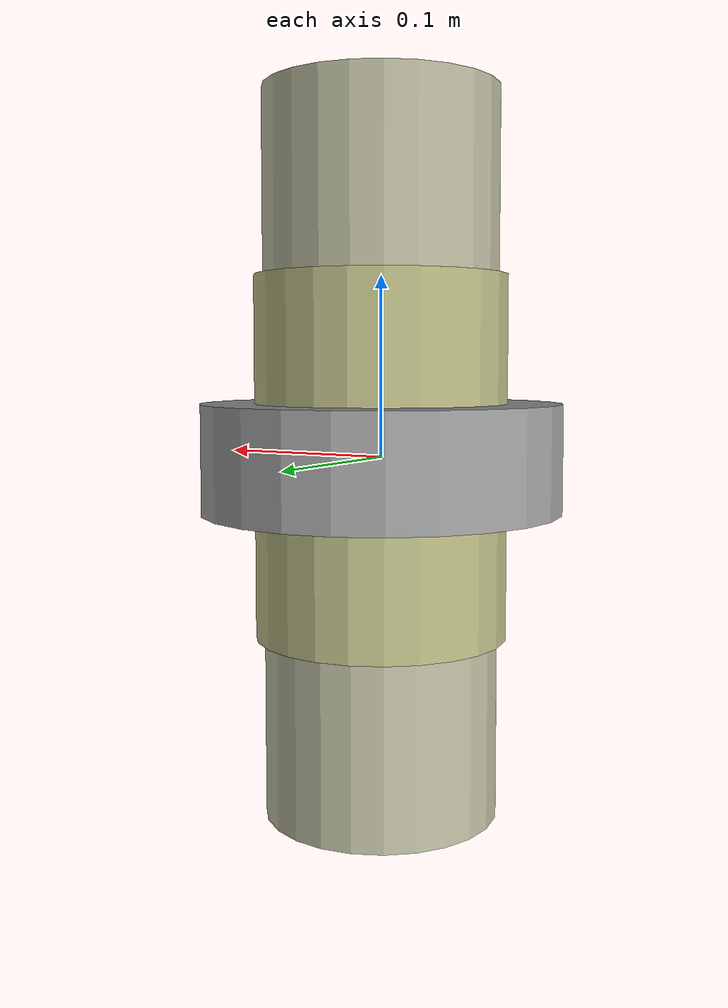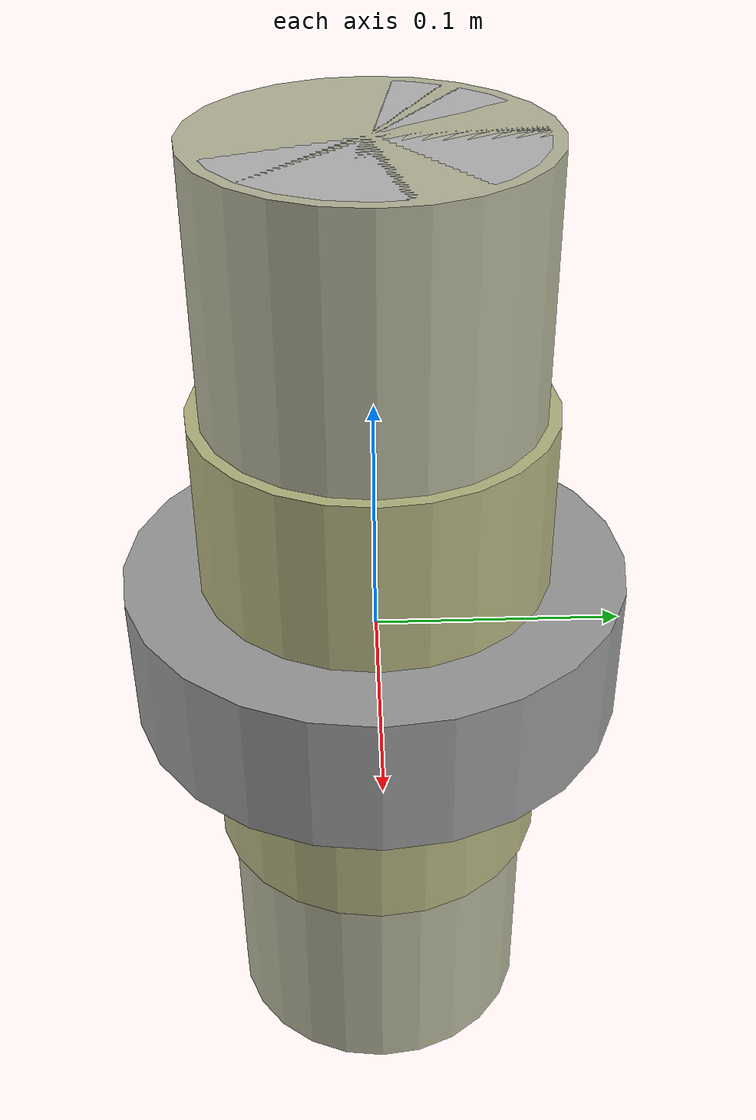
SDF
<?xml version="1.0"?>
<sdf version="1.7">
  <model name="lbr_iiwa">
    <static>false</static>
    <!-- Base Link -->
    <link name="base_link">
      <inertial>
        <mass>5.0</mass>
        <inertia>
          <ixx>0.03</ixx><ixy>0</ixy><ixz>0</ixz>
          <iyy>0.03</iyy><iyz>0</iyz>
          <izz>0.05</izz>
        </inertia>
      </inertial>
      <collision name="base_collision">
        <geometry><cylinder><radius>0.10</radius><length>0.06</length></cylinder></geometry>
      </collision>
      <visual name="base_visual">
        <geometry><cylinder><radius>0.10</radius><length>0.06</length></cylinder></geometry>
        <material><ambient>0.6 0.6 0.6 1</ambient></material>
      </visual>
    </link>
    <!-- link1 -->
    <link name="link1">
      <inertial>
        <mass>4.0</mass>
        <inertia><ixx>0.02</ixx><ixy>0</ixy><ixz>0</ixz><iyy>0.02</iyy><iyz>0</iyz><izz>0.01</izz></inertia>
      </inertial>
      <collision name="link1_collision">
        <geometry><cylinder><radius>0.07</radius><length>0.20</length></cylinder></geometry>
      </collision>
      <visual name="link1_visual">
        <geometry><cylinder><radius>0.07</radius><length>0.20</length></cylinder></geometry>
        <material><ambient>0.7 0.7 0.5 1</ambient></material>
      </visual>
    </link>
    <!-- link2 -->
    <link name="link2">
      <inertial>
        <mass>4.0</mass>
        <inertia><ixx>0.02</ixx><ixy>0</ixy><ixz>0</ixz><iyy>0.02</iyy><iyz>0</iyz><izz>0.01</izz></inertia>
      </inertial>
      <collision name="link2_collision">
        <geometry><cylinder><radius>0.065</radius><length>0.40</length></cylinder></geometry>
      </collision>
      <visual name="link2_visual">
        <geometry><cylinder><radius>0.065</radius><length>0.40</length></cylinder></geometry>
        <material><ambient>0.7 0.7 0.6 1</ambient></material>
      </visual>
    </link>
    <!-- link3 -->
    <link name="link3">
      <inertial>
        <mass>3.0</mass>
        <inertia><ixx>0.015</ixx><ixy>0</ixy><ixz>0</ixz><iyy>0.015</iyy><iyz>0</iyz><izz>0.008</izz></inertia>
      </inertial>
      <collision name="link3_collision">
        <geometry><cylinder><radius>0.06</radius><length>0.40</length></cylinder></geometry>
      </collision>
      <visual name="link3_visual">
        <geometry><cylinder><radius>0.06</radius><length>0.40</length></cylinder></geometry>
        <material><ambient>0.7 0.7 0.7 1</ambient></material>
      </visual>
    </link>
    <!-- link4 -->
    <link name="link4">
      <inertial>
        <mass>2.5</mass>
        <inertia><ixx>0.01</ixx><ixy>0</ixy><ixz>0</ixz><iyy>0.01</iyy><iyz>0</iyz><izz>0.006</izz></inertia>
      </inertial>
      <collision name="link4_collision">
        <geometry><cylinder><radius>0.055</radius><length>0.30</length></cylinder></geometry>
      </collision>
      <visual name="link4_visual">
        <geometry><cylinder><radius>0.055</radius><length>0.30</length></cylinder></geometry>
        <material><ambient>0.7 0.7 0.8 1</ambient></material>
      </visual>
    </link>
    <!-- link5 -->
    <link name="link5">
      <inertial>
        <mass>2.0</mass>
        <inertia><ixx>0.008</ixx><ixy>0</ixy><ixz>0</ixz><iyy>0.008</iyy><iyz>0</iyz><izz>0.004</izz></inertia>
      </inertial>
      <collision name="link5_collision">
        <geometry><cylinder><radius>0.05</radius><length>0.30</length></cylinder></geometry>
      </collision>
      <visual name="link5_visual">
        <geometry><cylinder><radius>0.05</radius><length>0.30</length></cylinder></geometry>
        <material><ambient>0.7 0.7 0.9 1</ambient></material>
      </visual>
    </link>
    <!-- link6 -->
    <link name="link6">
      <inertial>
        <mass>1.5</mass>
        <inertia><ixx>0.005</ixx><ixy>0</ixy><ixz>0</ixz><iyy>0.005</iyy><iyz>0</iyz><izz>0.003</izz></inertia>
      </inertial>
      <collision name="link6_collision">
        <geometry><cylinder><radius>0.045</radius><length>0.20</length></cylinder></geometry>
      </collision>
      <visual name="link6_visual">
        <geometry><cylinder><radius>0.045</radius><length>0.20</length></cylinder></geometry>
        <material><ambient>0.6 0.6 0.6 1</ambient></material>
      </visual>
    </link>
    <!-- link7 (end link) -->
    <link name="link7">
      <inertial>
        <mass>0.8</mass>
        <inertia><ixx>0.003</ixx><ixy>0</ixy><ixz>0</ixz><iyy>0.003</iyy><iyz>0</iyz><izz>0.002</izz></inertia>
      </inertial>
      <collision name="link7_collision">
        <geometry><cylinder><radius>0.04</radius><length>0.15</length></cylinder></geometry>
      </collision>
      <visual name="link7_visual">
        <geometry><cylinder><radius>0.04</radius><length>0.15</length></cylinder></geometry>
        <material><ambient>0.5 0.5 0.5 1</ambient></material>
      </visual>
    </link>
    <!-- Tool/End Effector -->
    <link name="end_link">
      <inertial>
        <mass>0.2</mass>
        <inertia><ixx>0.0005</ixx><ixy>0</ixy><ixz>0</ixz><iyy>0.0005</iyy><iyz>0</iyz><izz>0.0005</izz></inertia>
      </inertial>
      <collision name="end_collision">
        <geometry><box><size>0.03 0.03 0.06</size></box></geometry>
      </collision>
      <visual name="end_visual">
        <geometry><box><size>0.03 0.03 0.06</size></box></geometry>
        <material><ambient>0.2 0.6 0.2 1</ambient></material>
      </visual>
    </link>
    <!-- Joints (7 DOF) -->
    <joint name="base_joint" type="revolute">
      <parent>base_link</parent>
      <child>link1</child>
      <axis>0 0 1</axis>
      <pose>0 0 0.03 0 0 0</pose>
    </joint>
    <joint name="link1_joint" type="revolute">
      <parent>link1</parent>
      <child>link2</child>
      <axis>0 1 0</axis>
      <pose>0 0 0.10 0 0 0</pose>
    </joint>
    <joint name="link2_joint" type="revolute">
      <parent>link2</parent>
      <child>link3</child>
      <axis>0 1 0</axis>
      <pose>0 0 0.20 0 0 0</pose>
    </joint>
    <joint name="link3_joint" type="revolute">
      <parent>link3</parent>
      <child>link4</child>
      <axis>0 0 1</axis>
      <pose>0 0 0.20 0 0 0</pose>
    </joint>
    <joint name="link4_joint" type="revolute">
      <parent>link4</parent>
      <child>link5</child>
      <axis>0 1 0</axis>
      <pose>0 0 0.20 0 0 0</pose>
    </joint>
    <joint name="link5_joint" type="revolute">
      <parent>link5</parent>
      <child>link6</child>
      <axis>0 0 1</axis>
      <pose>0 0 0.15 0 0 0</pose>
    </joint>
    <joint name="link6_joint" type="revolute">
      <parent>link6</parent>
      <child>link7</child>
      <axis>0 1 0</axis>
      <pose>0 0 0.10 0 0 0</pose>
    </joint>
    <joint name="end_joint" type="fixed">
      <parent>link7</parent>
      <child>end_link</child>
      <pose>0 0 0.075 0 0 0</pose>
    </joint>
  </model>
</sdf>
